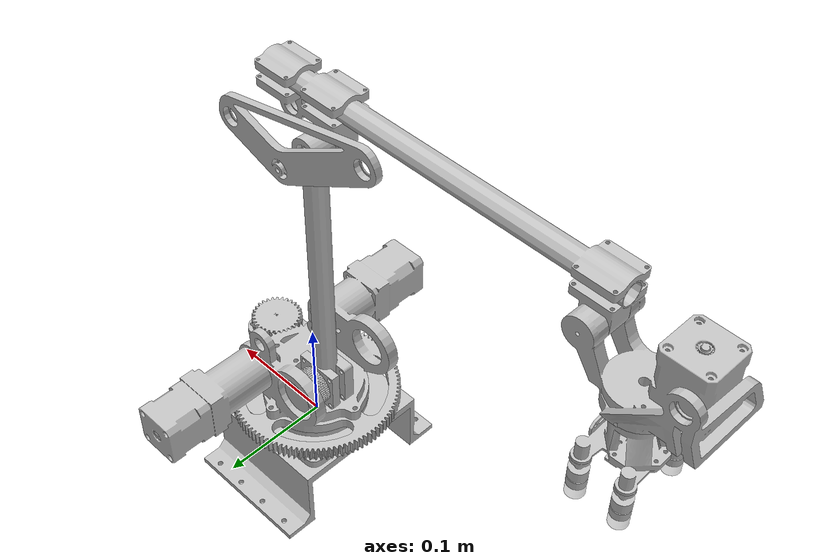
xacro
<?xml version="1.0" encoding="utf-8"?>
<robot xmlns:xacro="http://www.ros.org/wiki/xacro"
  name="assembly_hamster">

  <link
    name="base_link">
    <visual>
      <origin
        xyz="0 0 0"
        rpy="0 0 0" />
      <geometry>
        <mesh
          filename="package://assembly_hamster/meshes/base_link.STL" />
      </geometry>
      <material
        name="">
        <color
          rgba="0.75294 0.75294 0.75294 1" />
      </material>
    </visual>
    <collision>
      <origin
        xyz="0 0 0"
        rpy="0 0 0" />
      <geometry>
        <mesh
          filename="package://assembly_hamster/meshes/base_link.STL" />
      </geometry>
    </collision>
  </link>

  <link
    name="1_Link">
    <inertial>
      <origin
        xyz="0.01351 0.037179 -0.003383"
        rpy="0 0 0" />
      <mass
        value="2.6545" />
      <inertia
        ixx="0.0023682"
        ixy="8.0753E-05"
        ixz="1.7978E-05"
        iyy="0.0032175"
        iyz="4.8925E-05"
        izz="0.0021073" />
    </inertial>
    <visual>
      <origin
        xyz="0 0 0"
        rpy="0 0 0" />
      <geometry>
        <mesh
          filename="package://assembly_hamster/meshes/1_Link.STL" />
      </geometry>
      <material
        name="">
        <color
          rgba="0.75294 0.75294 0.75294 1" />
      </material>
    </visual>
    <collision>
      <origin
        xyz="0 0 0"
        rpy="0 0 0" />
      <geometry>
        <mesh
          filename="package://assembly_hamster/meshes/1_Link.STL" />
      </geometry>
    </collision>
  </link>

  <joint
    name="joint_1"
    type="revolute">
    <origin
      xyz="0 0 0.0202"
      rpy="1.5708 0 0" />
    <parent
      link="base_link" />
    <child
      link="1_Link" />
    <axis
      xyz="0 1 0" />
      <limit
      lower="-3"
      upper="3"
      effort="1000.0"
      velocity="0.1" />
  </joint>

  <link
    name="2_1_Link">
    <inertial>
      <origin
        xyz="-0.079036 -0.016436 -1.1424E-05"
        rpy="0 0 0" />
      <mass
        value="0.55117" />
      <inertia
        ixx="7.293E-05"
        ixy="4.1886E-08"
        ixz="1.1981E-07"
        iyy="0.00070853"
        iyz="4.1934E-08"
        izz="0.00068782" />
    </inertial>
    <visual>
      <origin
        xyz="0 0 0"
        rpy="0 0 0" />
      <geometry>
        <mesh
          filename="package://assembly_hamster/meshes/2_1_Link.STL" />
      </geometry>
      <material
        name="">
        <color
          rgba="0.75294 0.75294 0.75294 1" />
      </material>
    </visual>
    <collision>
      <origin
        xyz="0 0 0"
        rpy="0 0 0" />
      <geometry>
        <mesh
          filename="package://assembly_hamster/meshes/2_1_Link.STL" />
      </geometry>
    </collision>
  </link>

  <joint
    name="joint_2_1"
    type="revolute">
    <origin
      xyz="-0.0285 0.055 0"
      rpy="1.5708 0 -1.5708" />
    <parent
      link="1_Link" />
    <child
      link="2_1_Link" />
    <axis
      xyz="0 1 0" />
      <limit
      upper="1.5"
      lower="-0.8"
      effort="1000.0"
      velocity="0.1" />
  </joint>

  <link
    name="3_Link">
    <inertial>
      <origin
        xyz="-0.0704447246010788 0.343494150571024 -0.03888635607788"
        rpy="0 0 0" />
      <mass
        value="0.240854595463992" />
      <inertia
        ixx="5.70384323950151E-05"
        ixy="2.03886631821913E-05"
        ixz="-3.0839576044844E-08"
        iyy="0.000450948009144471"
        iyz="4.17435822214057E-09"
        izz="0.000492580105984167" />
    </inertial>
    <visual>
      <origin
        xyz="0 0 0"
        rpy="0 0 0" />
      <geometry>
        <mesh
          filename="package://assembly_hamster/meshes/3_Link.STL" />
      </geometry>
      <material
        name="">
        <color
          rgba="0.752941176470588 0.752941176470588 0.752941176470588 1" />
      </material>
    </visual>
    <collision>
      <origin
        xyz="0 0 0"
        rpy="0 0 0" />
      <geometry>
        <mesh
          filename="package://assembly_hamster/meshes/3_Link.STL" />
      </geometry>
    </collision>
  </link>

  <joint
    name="joint_3_base"
    type="fixed">
    <origin
      xyz="0.077076 0 0.024656"
      rpy="-1.5708 1.3472 0" />
    <parent
      link="2_1_Link" />
    <child
      link="3_Link" />
    <axis
      xyz="1 0 0" />
  </joint>

  <link
    name="3_1_Link">
    <inertial>
      <origin
        xyz="0.0225113352518309 0.0816101189194423 0.0111429600420675"
        rpy="0 0 0" />
      <mass
        value="0.706946980905885" />
      <inertia
        ixx="0.00157450700015675"
        ixy="3.60972844158452E-11"
        ixz="1.93929692550891E-06"
        iyy="0.000107129521994653"
        iyz="-7.73897691995558E-12"
        izz="0.00157126380530245" />
    </inertial>
    <visual>
      <origin
        xyz="0 0 0"
        rpy="0 0 0" />
      <geometry>
        <mesh
          filename="package://assembly_hamster/meshes/3_1_Link.STL" />
      </geometry>
      <material
        name="">
        <color
          rgba="0.752941176470588 0.752941176470588 0.752941176470588 1" />
      </material>
    </visual>
    <collision>
      <origin
        xyz="0 0 0"
        rpy="0 0 0" />
      <geometry>
        <mesh
          filename="package://assembly_hamster/meshes/3_1_Link.STL" />
      </geometry>
    </collision>
  </link>

  <joint
    name="joint_3_1"
    type="revolute">
    <origin
      xyz="-0.048498 0.3244 0"
      rpy="0 0 1.8008" />
    <parent
      link="3_Link" />
    <child
      link="3_1_Link" />
    <axis
      xyz="0 0 1" />
      <limit
      lower="-3"
      upper="1.3"
      effort="1000.0"
      velocity="0.1" />
  </joint>

  <link
    name="last_Link">
    <inertial>
      <origin
        xyz="0.00458290320651195 0.00403833478304899 -0.0619326448877698"
        rpy="0 0 0" />
      <mass
        value="1.25124090194283" />
      <inertia
        ixx="0.000910187410735932"
        ixy="-8.26464406621072E-05"
        ixz="-0.000139433164917929"
        iyy="0.00114548708038895"
        iyz="-8.56917911613583E-05"
        izz="0.000580086863956969" />
    </inertial>
    <visual>
      <origin
        xyz="0 0 0"
        rpy="0 0 0" />
      <geometry>
        <mesh
          filename="package://assembly_hamster/meshes/last_Link.STL" />
      </geometry>
      <material
        name="">
        <color
          rgba="0.752941176470588 0.752941176470588 0.752941176470588 1" />
      </material>
    </visual>
    <collision>
      <origin
        xyz="0 0 0"
        rpy="0 0 0" />
      <geometry>
        <mesh
          filename="package://assembly_hamster/meshes/last_Link.STL" />
      </geometry>
    </collision>
  </link>

<link
name="last_Link_2">
</link>

  <joint
    name="joint_last_2"
    type="revolute">
    <origin
      xyz="0 0.25 -0.0005"
      rpy="3.14 -1.57 -1.5708"/>
    <parent
      link="3_1_Link" />
    <child
      link="last_Link_2" />
    <axis
      xyz="1 0 0" />
       <mimic joint="joint_2_1"  multiplier="-1" offset="0" />
  <limit
      lower="-3"
      upper="3"
      effort="1000.0"
      velocity="0.1" />
  </joint>

  <joint
    name="joint_last"
    type="revolute">
    <origin
       xyz="0 0 0"
      rpy="0 0 0"/>
    <parent
      link="last_Link_2" />
    <child
      link="last_Link" />
    <axis
      xyz="1 0 0" />
       <mimic joint="joint_3_1"  multiplier="-1" offset="0" />
  <limit
      lower="-3"
      upper="3"
      effort="1000.0"
      velocity="0.1" />
  </joint>

<link
name="end_link">
</link>

<joint
    name="joint_gripper"
    type="revolute">
    <origin
      xyz="0 0.032 -0.045"
      rpy="1.5708 0 3.1416" />
    <parent
      link="last_Link" />
    <child
      link="end_link" />
    <axis
      xyz="0 0 1" />
      <limit
      lower="-3.14"
      upper="3.14"
      effort="1000.0"
      velocity="0.1" />
  </joint>

  <link
    name="gripper">
    <inertial>
      <origin
        xyz="5.86233622760363E-06 -0.000606087650654452 0.0417223441506261"
        rpy="0 0 0" />
      <mass
        value="0.442243456619388" />
      <inertia
        ixx="8.43721038666399E-05"
        ixy="2.09810431459494E-07"
        ixz="-2.31972138398739E-07"
        iyy="8.65761187754296E-05"
        iyz="2.91645480078844E-06"
        izz="7.21955526660134E-05" />
    </inertial>
    <visual>
      <origin
        xyz="0 0 0"
        rpy="0 0 0" />
      <geometry>
        <mesh
          filename="package://assembly_hamster/meshes/end_Link.STL" />
      </geometry>
      <material
        name="">
        <color
          rgba="0.752941176470588 0.752941176470588 0.752941176470588 1" />
      </material>
    </visual>
    <collision>
      <origin
        xyz="0 0 0"
        rpy="0 0 0" />
      <geometry>
        <mesh
          filename="package://assembly_hamster/meshes/end_Link.STL" />
      </geometry>
    </collision>
  </link>

  <joint
    name="joint_end_effector"
    type="fixed">
    <origin
      xyz="0 0 0"
      rpy="0 0 0" />
    <parent
      link="end_link" />
    <child
      link="gripper" />
  </joint>

      <gazebo>
        <plugin name="gazebo_ros_control" filename="libgazebo_ros_control.so">
        <robotNamespace>/assembly_hamster</robotNamespace>
        </plugin>
    </gazebo>

</robot>
